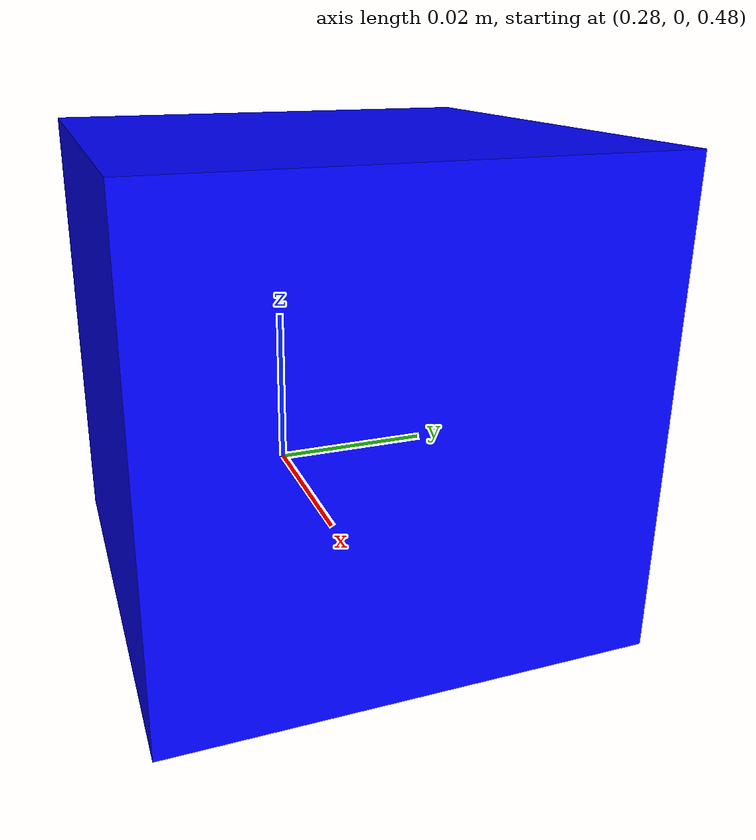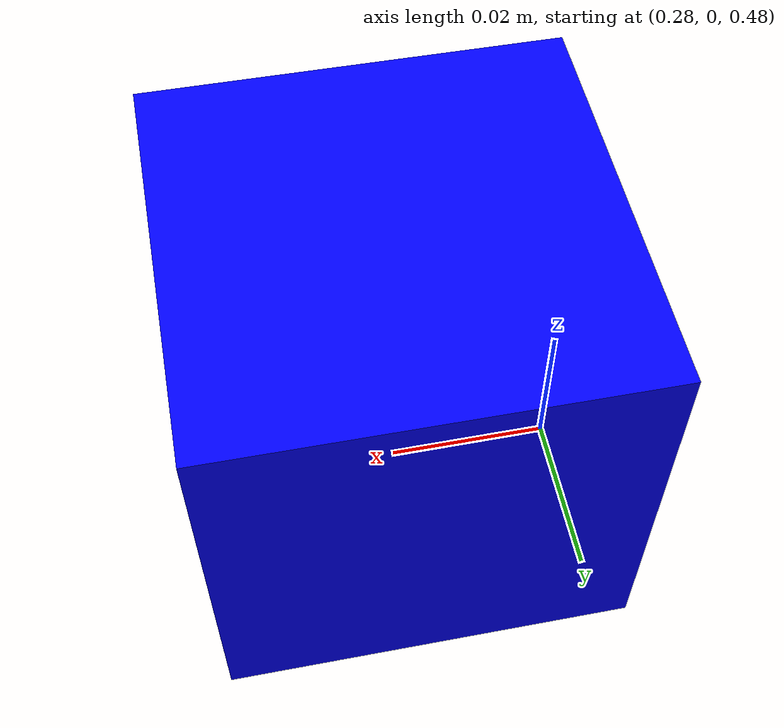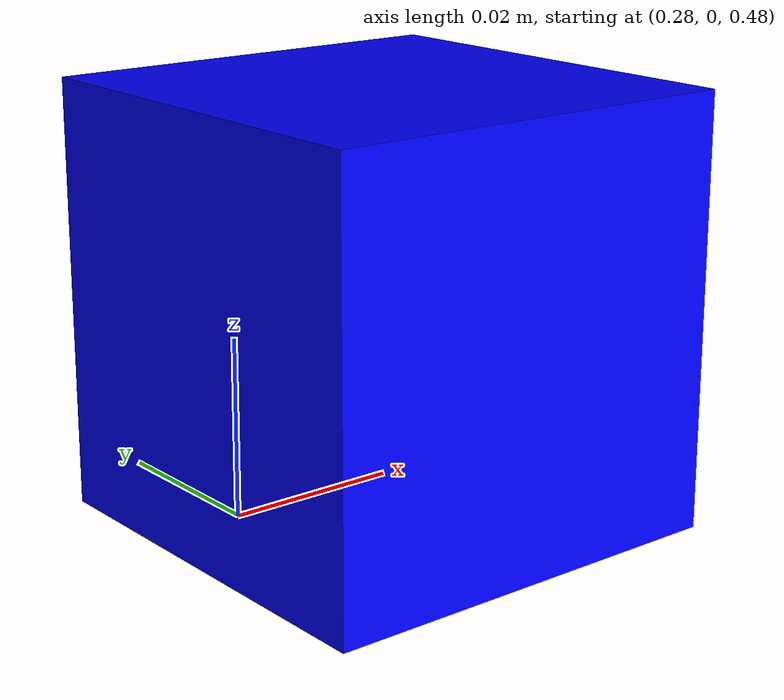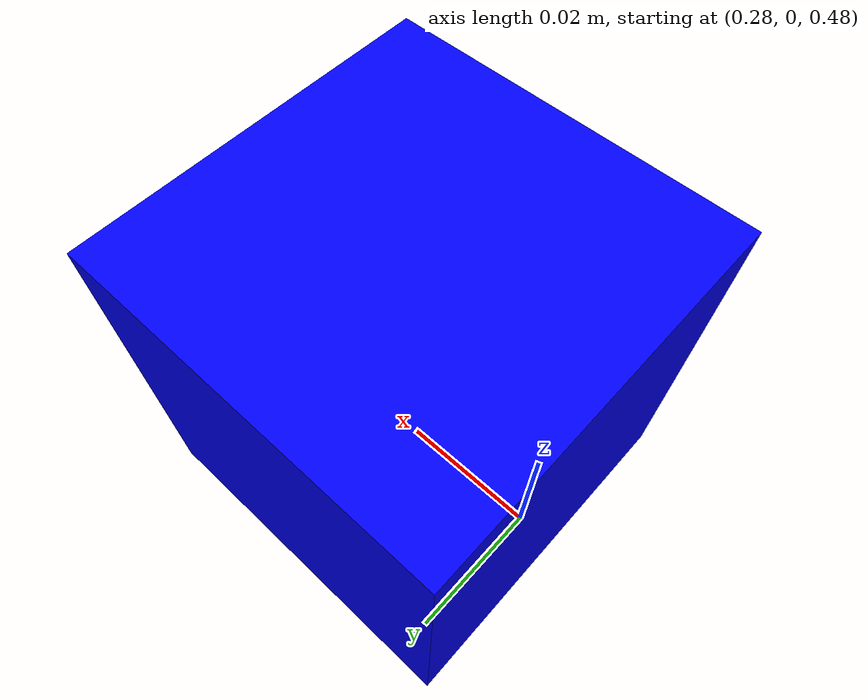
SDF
<?xml version="1.0"?>

<sdf version="1.6">
  <world name="default">
    <!-- Plugin for simulating physics -->
      <plugin
      filename="gz-sim-physics-system"
      name="gz::sim::systems::Physics">
      <engine>
          <filename>gz-physics-dartsim-plugin</filename>
      </engine>
    </plugin>
    <physics name="fastaspossible" default="true" type="dart">
    <!-- 控制仿真速度，相对于真实时间的比例 -->
    <real_time_factor>50.0</real_time_factor>
    <!-- 每一步的最大时间间隔 -->
    <max_step_size>0.004166666666666667</max_step_size>
    <!-- 仿真更新的频率 -->
    <real_time_update_rate>240</real_time_update_rate>
    <!-- 求解器参数 -->
    <solver>
      <iterations>100</iterations>
    </solver>
    <!-- dartsim 专有参数，可根据需求进行调整 -->
    <dartsim>
      <!-- ERP：控制关节误差的修正比例 -->
      <error_reduction_parameter>0.8</error_reduction_parameter>
      <!-- CFM：约束力混合，防止数值不稳定 -->
      <constraint_force_mixing>0.0</constraint_force_mixing>
    </dartsim>
  </physics>

    <!-- Plugin for handling user commands -->
    <plugin
      filename="gz-sim-user-commands-system"
      name="gz::sim::systems::UserCommands">
    </plugin>

    <!-- Plugin for broadcasting scene updates -->
    <plugin
      filename="gz-sim-scene-broadcaster-system"
      name="gz::sim::systems::SceneBroadcaster">
    </plugin>

    <gravity>0.0 0.0 -9.8</gravity>

    <!-- Include a model of the Sun from an external URI -->
    <include>
      <uri>
        https://fuel.gazebosim.org/1.0/OpenRobotics/models/Sun
      </uri>
    </include>

    <!-- Include a model of the Ground Plane from an external URI -->
    <include>
      <uri>
        https://fuel.gazebosim.org/1.0/OpenRobotics/models/Ground Plane
      </uri>
    </include>

    <model name='target'>
      <static>true</static>
      <pose>0.3 0 0.5 0 0 0</pose><!--pose relative to the world-->
      <link name='target_box'>
          <pose/>
          <visual name='visual'>
          <geometry>
            <box>
              <size>0.05 0.05 0.05 </size>  <!-- 半径 -->
            </box>
          </geometry>

                <!--let's add color to our link-->
          <material>
            <ambient>0.0 0.0 1.0 1</ambient>
            <diffuse>0.0 0.0 1.0 1</diffuse>
            <specular>0.0 0.0 1.0 1</specular>
          </material>
          </visual>
          <sensor name='sensor_contact' type='contact'>
            <contact>
              <collision>collision</collision>
            </contact>
          </sensor>
      </link>
      <plugin filename="libignition-gazebo-touchplugin-system.so"
            name="ignition::gazebo::systems::TouchPlugin">
        <target>ur</target>
        <namespace>wall</namespace>
        <time>0.001</time>
        <enabled>true</enabled>
      </plugin>
    </model>

    <scene>
      <shadows>false</shadows>
    </scene>
    <plugin
      filename="gz-sim-sensors-system"
      name="gz::sim::systems::Sensors">
      <render_engine>ogre2</render_engine>
    </plugin>
    <plugin filename="libignition-gazebo-contact-system.so"
        name="ignition::gazebo::systems::Contact">
    </plugin>
  </world>
</sdf>
